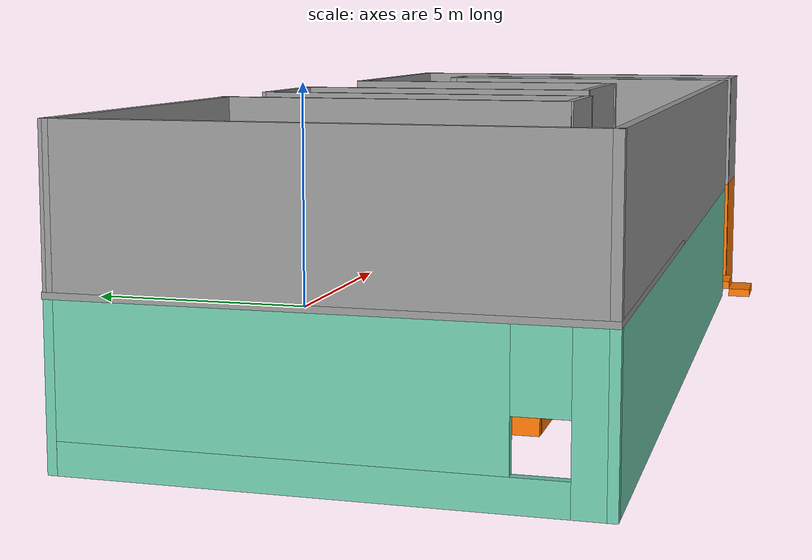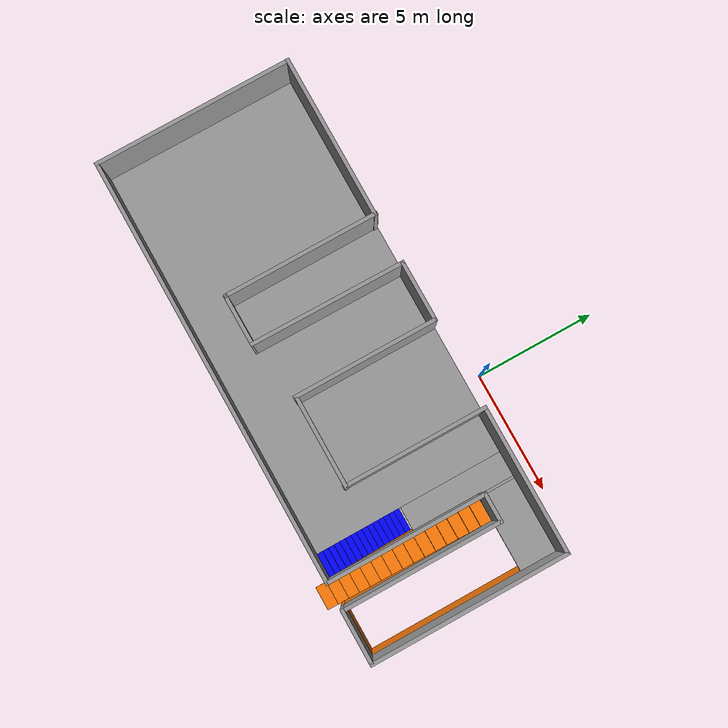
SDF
<?xml version='1.0'?>
<sdf version='1.6'>
  <model name='sal_building'>
    <pose frame=''>-3.02006 -5.15772 0 0 -0 0</pose>
    <link name='Floor_0'>
      <pose frame=''>0 0.303017 2.5 0 -0 0</pose>
      <visual name='Floor_0_Visual_0'>
        <pose frame=''>-2.15352 0 0.05 0 -0 0</pose>
        <geometry>
          <box>
            <size>16.1432 8.02059 0.1</size>
          </box>
        </geometry>
        <material>
          <script>
            <uri>file://media/materials/scripts/gazebo.material</uri>
            <name>Gazebo/Grey</name>
          </script>
          <ambient>1 1 1 1</ambient>
        </material>
      </visual>
      <collision name='Floor_0_Collision_0'>
        <geometry>
          <box>
            <size>16.1432 8.02059 0.1</size>
          </box>
        </geometry>
        <pose frame=''>-2.15352 0 0.05 0 -0 0</pose>
      </collision>
      <visual name='Floor_0_Visual_1'>
        <pose frame=''>6.46873 -3.93795 0.05 0 -0 0</pose>
        <geometry>
          <box>
            <size>1.10132 0.14469 0.1</size>
          </box>
        </geometry>
        <material>
          <script>
            <uri>file://media/materials/scripts/gazebo.material</uri>
            <name>Gazebo/Grey</name>
          </script>
          <ambient>1 1 1 1</ambient>
        </material>
      </visual>
      <collision name='Floor_0_Collision_1'>
        <geometry>
          <box>
            <size>1.10132 0.14469 0.1</size>
          </box>
        </geometry>
        <pose frame=''>6.46873 -3.93795 0.05 0 -0 0</pose>
      </collision>
      <visual name='Floor_0_Visual_2'>
        <pose frame=''>6.96873 0.072345 0.05 0 -0 0</pose>
        <geometry>
          <box>
            <size>0.101315 7.8759 0.1</size>
          </box>
        </geometry>
        <material>
          <script>
            <uri>file://media/materials/scripts/gazebo.material</uri>
            <name>Gazebo/Grey</name>
          </script>
          <ambient>1 1 1 1</ambient>
        </material>
      </visual>
      <collision name='Floor_0_Collision_2'>
        <geometry>
          <box>
            <size>0.101315 7.8759 0.1</size>
          </box>
        </geometry>
        <pose frame=''>6.96873 0.072345 0.05 0 -0 0</pose>
      </collision>
      <visual name='Floor_0_Visual_3'>
        <pose frame=''>6.41807 1.82235 0.05 0 -0 0</pose>
        <geometry>
          <box>
            <size>1 4.3759 0.1</size>
          </box>
        </geometry>
        <material>
          <script>
            <uri>file://media/materials/scripts/gazebo.material</uri>
            <name>Gazebo/Grey</name>
          </script>
          <ambient>1 1 1 1</ambient>
        </material>
      </visual>
      <collision name='Floor_0_Collision_3'>
        <geometry>
          <box>
            <size>1 4.3759 0.1</size>
          </box>
        </geometry>
        <pose frame=''>6.41807 1.82235 0.05 0 -0 0</pose>
      </collision>
      <visual name='Floor_0_Visual_4'>
        <pose frame=''>8.62225 3.17806 0.05 0 -0 0</pose>
        <geometry>
          <box>
            <size>3.20573 1.66447 0.1</size>
          </box>
        </geometry>
        <material>
          <script>
            <uri>file://media/materials/scripts/gazebo.material</uri>
            <name>Gazebo/Grey</name>
          </script>
          <ambient>1 1 1 1</ambient>
        </material>
      </visual>
      <collision name='Floor_0_Collision_4'>
        <geometry>
          <box>
            <size>3.20573 1.66447 0.1</size>
          </box>
        </geometry>
        <pose frame=''>8.62225 3.17806 0.05 0 -0 0</pose>
      </collision>
    </link>
    <link name='Stairs_0'>
      <visual name='Stairs_0_Visual_0'>
        <pose frame=''>6.41807 -0.179254 0.083333 0 -0 0</pose>
        <geometry>
          <box>
            <size>1 0.233333 0.166667</size>
          </box>
        </geometry>
        <material>
          <script>
            <uri>file://media/materials/scripts/gazebo.material</uri>
            <name>Gazebo/Grey</name>
          </script>
          <ambient>0 0 1 1</ambient>
        </material>
      </visual>
      <collision name='Stairs_0_Collision_0'>
        <geometry>
          <box>
            <size>1 0.233333 0.166667</size>
          </box>
        </geometry>
        <pose frame=''>6.41807 -0.179254 0.083333 0 -0 0</pose>
      </collision>
      <visual name='Stairs_0_Visual_1'>
        <pose frame=''>6.41807 -0.412587 0.25 0 -0 0</pose>
        <geometry>
          <box>
            <size>1 0.233333 0.166667</size>
          </box>
        </geometry>
        <material>
          <script>
            <uri>file://media/materials/scripts/gazebo.material</uri>
            <name>Gazebo/Grey</name>
          </script>
          <ambient>0 0 1 1</ambient>
        </material>
      </visual>
      <collision name='Stairs_0_Collision_1'>
        <geometry>
          <box>
            <size>1 0.233333 0.166667</size>
          </box>
        </geometry>
        <pose frame=''>6.41807 -0.412587 0.25 0 -0 0</pose>
      </collision>
      <visual name='Stairs_0_Visual_2'>
        <pose frame=''>6.41807 -0.64592 0.416667 0 -0 0</pose>
        <geometry>
          <box>
            <size>1 0.233333 0.166667</size>
          </box>
        </geometry>
        <material>
          <script>
            <uri>file://media/materials/scripts/gazebo.material</uri>
            <name>Gazebo/Grey</name>
          </script>
          <ambient>0 0 1 1</ambient>
        </material>
      </visual>
      <collision name='Stairs_0_Collision_2'>
        <geometry>
          <box>
            <size>1 0.233333 0.166667</size>
          </box>
        </geometry>
        <pose frame=''>6.41807 -0.64592 0.416667 0 -0 0</pose>
      </collision>
      <visual name='Stairs_0_Visual_3'>
        <pose frame=''>6.41807 -0.879253 0.583333 0 -0 0</pose>
        <geometry>
          <box>
            <size>1 0.233333 0.166667</size>
          </box>
        </geometry>
        <material>
          <script>
            <uri>file://media/materials/scripts/gazebo.material</uri>
            <name>Gazebo/Grey</name>
          </script>
          <ambient>0 0 1 1</ambient>
        </material>
      </visual>
      <collision name='Stairs_0_Collision_3'>
        <geometry>
          <box>
            <size>1 0.233333 0.166667</size>
          </box>
        </geometry>
        <pose frame=''>6.41807 -0.879253 0.583333 0 -0 0</pose>
      </collision>
      <visual name='Stairs_0_Visual_4'>
        <pose frame=''>6.41807 -1.11259 0.75 0 -0 0</pose>
        <geometry>
          <box>
            <size>1 0.233333 0.166667</size>
          </box>
        </geometry>
        <material>
          <script>
            <uri>file://media/materials/scripts/gazebo.material</uri>
            <name>Gazebo/Grey</name>
          </script>
          <ambient>0 0 1 1</ambient>
        </material>
      </visual>
      <collision name='Stairs_0_Collision_4'>
        <geometry>
          <box>
            <size>1 0.233333 0.166667</size>
          </box>
        </geometry>
        <pose frame=''>6.41807 -1.11259 0.75 0 -0 0</pose>
      </collision>
      <visual name='Stairs_0_Visual_5'>
        <pose frame=''>6.41807 -1.34592 0.916667 0 -0 0</pose>
        <geometry>
          <box>
            <size>1 0.233333 0.166667</size>
          </box>
        </geometry>
        <material>
          <script>
            <uri>file://media/materials/scripts/gazebo.material</uri>
            <name>Gazebo/Grey</name>
          </script>
          <ambient>0 0 1 1</ambient>
        </material>
      </visual>
      <collision name='Stairs_0_Collision_5'>
        <geometry>
          <box>
            <size>1 0.233333 0.166667</size>
          </box>
        </geometry>
        <pose frame=''>6.41807 -1.34592 0.916667 0 -0 0</pose>
      </collision>
      <visual name='Stairs_0_Visual_6'>
        <pose frame=''>6.41807 -1.57925 1.08333 0 -0 0</pose>
        <geometry>
          <box>
            <size>1 0.233333 0.166667</size>
          </box>
        </geometry>
        <material>
          <script>
            <uri>file://media/materials/scripts/gazebo.material</uri>
            <name>Gazebo/Grey</name>
          </script>
          <ambient>0 0 1 1</ambient>
        </material>
      </visual>
      <collision name='Stairs_0_Collision_6'>
        <geometry>
          <box>
            <size>1 0.233333 0.166667</size>
          </box>
        </geometry>
        <pose frame=''>6.41807 -1.57925 1.08333 0 -0 0</pose>
      </collision>
      <visual name='Stairs_0_Visual_7'>
        <pose frame=''>6.41807 -1.81259 1.25 0 -0 0</pose>
        <geometry>
          <box>
            <size>1 0.233333 0.166667</size>
          </box>
        </geometry>
        <material>
          <script>
            <uri>file://media/materials/scripts/gazebo.material</uri>
            <name>Gazebo/Grey</name>
          </script>
          <ambient>0 0 1 1</ambient>
        </material>
      </visual>
      <collision name='Stairs_0_Collision_7'>
        <geometry>
          <box>
            <size>1 0.233333 0.166667</size>
          </box>
        </geometry>
        <pose frame=''>6.41807 -1.81259 1.25 0 -0 0</pose>
      </collision>
      <visual name='Stairs_0_Visual_8'>
        <pose frame=''>6.41807 -2.04592 1.41667 0 -0 0</pose>
        <geometry>
          <box>
            <size>1 0.233333 0.166667</size>
          </box>
        </geometry>
        <material>
          <script>
            <uri>file://media/materials/scripts/gazebo.material</uri>
            <name>Gazebo/Grey</name>
          </script>
          <ambient>0 0 1 1</ambient>
        </material>
      </visual>
      <collision name='Stairs_0_Collision_8'>
        <geometry>
          <box>
            <size>1 0.233333 0.166667</size>
          </box>
        </geometry>
        <pose frame=''>6.41807 -2.04592 1.41667 0 -0 0</pose>
      </collision>
      <visual name='Stairs_0_Visual_9'>
        <pose frame=''>6.41807 -2.27925 1.58333 0 -0 0</pose>
        <geometry>
          <box>
            <size>1 0.233333 0.166667</size>
          </box>
        </geometry>
        <material>
          <script>
            <uri>file://media/materials/scripts/gazebo.material</uri>
            <name>Gazebo/Grey</name>
          </script>
          <ambient>0 0 1 1</ambient>
        </material>
      </visual>
      <collision name='Stairs_0_Collision_9'>
        <geometry>
          <box>
            <size>1 0.233333 0.166667</size>
          </box>
        </geometry>
        <pose frame=''>6.41807 -2.27925 1.58333 0 -0 0</pose>
      </collision>
      <visual name='Stairs_0_Visual_10'>
        <pose frame=''>6.41807 -2.51259 1.75 0 -0 0</pose>
        <geometry>
          <box>
            <size>1 0.233333 0.166667</size>
          </box>
        </geometry>
        <material>
          <script>
            <uri>file://media/materials/scripts/gazebo.material</uri>
            <name>Gazebo/Grey</name>
          </script>
          <ambient>0 0 1 1</ambient>
        </material>
      </visual>
      <collision name='Stairs_0_Collision_10'>
        <geometry>
          <box>
            <size>1 0.233333 0.166667</size>
          </box>
        </geometry>
        <pose frame=''>6.41807 -2.51259 1.75 0 -0 0</pose>
      </collision>
      <visual name='Stairs_0_Visual_11'>
        <pose frame=''>6.41807 -2.74592 1.91667 0 -0 0</pose>
        <geometry>
          <box>
            <size>1 0.233333 0.166667</size>
          </box>
        </geometry>
        <material>
          <script>
            <uri>file://media/materials/scripts/gazebo.material</uri>
            <name>Gazebo/Grey</name>
          </script>
          <ambient>0 0 1 1</ambient>
        </material>
      </visual>
      <collision name='Stairs_0_Collision_11'>
        <geometry>
          <box>
            <size>1 0.233333 0.166667</size>
          </box>
        </geometry>
        <pose frame=''>6.41807 -2.74592 1.91667 0 -0 0</pose>
      </collision>
      <visual name='Stairs_0_Visual_12'>
        <pose frame=''>6.41807 -2.97925 2.08333 0 -0 0</pose>
        <geometry>
          <box>
            <size>1 0.233333 0.166667</size>
          </box>
        </geometry>
        <material>
          <script>
            <uri>file://media/materials/scripts/gazebo.material</uri>
            <name>Gazebo/Grey</name>
          </script>
          <ambient>0 0 1 1</ambient>
        </material>
      </visual>
      <collision name='Stairs_0_Collision_12'>
        <geometry>
          <box>
            <size>1 0.233333 0.166667</size>
          </box>
        </geometry>
        <pose frame=''>6.41807 -2.97925 2.08333 0 -0 0</pose>
      </collision>
      <visual name='Stairs_0_Visual_13'>
        <pose frame=''>6.41807 -3.21259 2.25 0 -0 0</pose>
        <geometry>
          <box>
            <size>1 0.233333 0.166667</size>
          </box>
        </geometry>
        <material>
          <script>
            <uri>file://media/materials/scripts/gazebo.material</uri>
            <name>Gazebo/Grey</name>
          </script>
          <ambient>0 0 1 1</ambient>
        </material>
      </visual>
      <collision name='Stairs_0_Collision_13'>
        <geometry>
          <box>
            <size>1 0.233333 0.166667</size>
          </box>
        </geometry>
        <pose frame=''>6.41807 -3.21259 2.25 0 -0 0</pose>
      </collision>
      <visual name='Stairs_0_Visual_14'>
        <pose frame=''>6.41807 -3.44592 2.41667 0 -0 0</pose>
        <geometry>
          <box>
            <size>1 0.233333 0.166667</size>
          </box>
        </geometry>
        <material>
          <script>
            <uri>file://media/materials/scripts/gazebo.material</uri>
            <name>Gazebo/Grey</name>
          </script>
          <ambient>0 0 1 1</ambient>
        </material>
      </visual>
      <collision name='Stairs_0_Collision_14'>
        <geometry>
          <box>
            <size>1 0.233333 0.166667</size>
          </box>
        </geometry>
        <pose frame=''>6.41807 -3.44592 2.41667 0 -0 0</pose>
      </collision>
    </link>
    <link name='Stairs_1'>
      <visual name='Stairs_1_Visual_0'>
        <pose frame=''>7.50551 -4.08124 0.083333 0 -0 -3.14159</pose>
        <geometry>
          <box>
            <size>0.972243 0.464143 0.166667</size>
          </box>
        </geometry>
        <material>
          <script>
            <uri>file://media/materials/scripts/gazebo.material</uri>
            <name>Gazebo/Grey</name>
          </script>
          <ambient>0.996078 0.47451 0.0196078 1</ambient>
        </material>
      </visual>
      <collision name='Stairs_1_Collision_0'>
        <geometry>
          <box>
            <size>0.972243 0.464143 0.166667</size>
          </box>
        </geometry>
        <pose frame=''>7.50551 -4.08124 0.083333 0 -0 -3.14159</pose>
      </collision>
      <visual name='Stairs_1_Visual_1'>
        <pose frame=''>7.50551 -3.61709 0.25 0 -0 -3.14159</pose>
        <geometry>
          <box>
            <size>0.972243 0.464143 0.166667</size>
          </box>
        </geometry>
        <material>
          <script>
            <uri>file://media/materials/scripts/gazebo.material</uri>
            <name>Gazebo/Grey</name>
          </script>
          <ambient>0.996078 0.47451 0.0196078 1</ambient>
        </material>
      </visual>
      <collision name='Stairs_1_Collision_1'>
        <geometry>
          <box>
            <size>0.972243 0.464143 0.166667</size>
          </box>
        </geometry>
        <pose frame=''>7.50551 -3.61709 0.25 0 -0 -3.14159</pose>
      </collision>
      <visual name='Stairs_1_Visual_2'>
        <pose frame=''>7.50551 -3.15295 0.416667 0 -0 -3.14159</pose>
        <geometry>
          <box>
            <size>0.972243 0.464143 0.166667</size>
          </box>
        </geometry>
        <material>
          <script>
            <uri>file://media/materials/scripts/gazebo.material</uri>
            <name>Gazebo/Grey</name>
          </script>
          <ambient>0.996078 0.47451 0.0196078 1</ambient>
        </material>
      </visual>
      <collision name='Stairs_1_Collision_2'>
        <geometry>
          <box>
            <size>0.972243 0.464143 0.166667</size>
          </box>
        </geometry>
        <pose frame=''>7.50551 -3.15295 0.416667 0 -0 -3.14159</pose>
      </collision>
      <visual name='Stairs_1_Visual_3'>
        <pose frame=''>7.50551 -2.68881 0.583333 0 -0 -3.14159</pose>
        <geometry>
          <box>
            <size>0.972243 0.464143 0.166667</size>
          </box>
        </geometry>
        <material>
          <script>
            <uri>file://media/materials/scripts/gazebo.material</uri>
            <name>Gazebo/Grey</name>
          </script>
          <ambient>0.996078 0.47451 0.0196078 1</ambient>
        </material>
      </visual>
      <collision name='Stairs_1_Collision_3'>
        <geometry>
          <box>
            <size>0.972243 0.464143 0.166667</size>
          </box>
        </geometry>
        <pose frame=''>7.50551 -2.68881 0.583333 0 -0 -3.14159</pose>
      </collision>
      <visual name='Stairs_1_Visual_4'>
        <pose frame=''>7.50551 -2.22467 0.75 0 -0 -3.14159</pose>
        <geometry>
          <box>
            <size>0.972243 0.464143 0.166667</size>
          </box>
        </geometry>
        <material>
          <script>
            <uri>file://media/materials/scripts/gazebo.material</uri>
            <name>Gazebo/Grey</name>
          </script>
          <ambient>0.996078 0.47451 0.0196078 1</ambient>
        </material>
      </visual>
      <collision name='Stairs_1_Collision_4'>
        <geometry>
          <box>
            <size>0.972243 0.464143 0.166667</size>
          </box>
        </geometry>
        <pose frame=''>7.50551 -2.22467 0.75 0 -0 -3.14159</pose>
      </collision>
      <visual name='Stairs_1_Visual_5'>
        <pose frame=''>7.50551 -1.76052 0.916667 0 -0 -3.14159</pose>
        <geometry>
          <box>
            <size>0.972243 0.464143 0.166667</size>
          </box>
        </geometry>
        <material>
          <script>
            <uri>file://media/materials/scripts/gazebo.material</uri>
            <name>Gazebo/Grey</name>
          </script>
          <ambient>0.996078 0.47451 0.0196078 1</ambient>
        </material>
      </visual>
      <collision name='Stairs_1_Collision_5'>
        <geometry>
          <box>
            <size>0.972243 0.464143 0.166667</size>
          </box>
        </geometry>
        <pose frame=''>7.50551 -1.76052 0.916667 0 -0 -3.14159</pose>
      </collision>
      <visual name='Stairs_1_Visual_6'>
        <pose frame=''>7.50551 -1.29638 1.08333 0 -0 -3.14159</pose>
        <geometry>
          <box>
            <size>0.972243 0.464143 0.166667</size>
          </box>
        </geometry>
        <material>
          <script>
            <uri>file://media/materials/scripts/gazebo.material</uri>
            <name>Gazebo/Grey</name>
          </script>
          <ambient>0.996078 0.47451 0.0196078 1</ambient>
        </material>
      </visual>
      <collision name='Stairs_1_Collision_6'>
        <geometry>
          <box>
            <size>0.972243 0.464143 0.166667</size>
          </box>
        </geometry>
        <pose frame=''>7.50551 -1.29638 1.08333 0 -0 -3.14159</pose>
      </collision>
      <visual name='Stairs_1_Visual_7'>
        <pose frame=''>7.50551 -0.832236 1.25 0 -0 -3.14159</pose>
        <geometry>
          <box>
            <size>0.972243 0.464143 0.166667</size>
          </box>
        </geometry>
        <material>
          <script>
            <uri>file://media/materials/scripts/gazebo.material</uri>
            <name>Gazebo/Grey</name>
          </script>
          <ambient>0.996078 0.47451 0.0196078 1</ambient>
        </material>
      </visual>
      <collision name='Stairs_1_Collision_7'>
        <geometry>
          <box>
            <size>0.972243 0.464143 0.166667</size>
          </box>
        </geometry>
        <pose frame=''>7.50551 -0.832236 1.25 0 -0 -3.14159</pose>
      </collision>
      <visual name='Stairs_1_Visual_8'>
        <pose frame=''>7.50551 -0.368093 1.41667 0 -0 -3.14159</pose>
        <geometry>
          <box>
            <size>0.972243 0.464143 0.166667</size>
          </box>
        </geometry>
        <material>
          <script>
            <uri>file://media/materials/scripts/gazebo.material</uri>
            <name>Gazebo/Grey</name>
          </script>
          <ambient>0.996078 0.47451 0.0196078 1</ambient>
        </material>
      </visual>
      <collision name='Stairs_1_Collision_8'>
        <geometry>
          <box>
            <size>0.972243 0.464143 0.166667</size>
          </box>
        </geometry>
        <pose frame=''>7.50551 -0.368093 1.41667 0 -0 -3.14159</pose>
      </collision>
      <visual name='Stairs_1_Visual_9'>
        <pose frame=''>7.50551 0.09605 1.58333 0 -0 -3.14159</pose>
        <geometry>
          <box>
            <size>0.972243 0.464143 0.166667</size>
          </box>
        </geometry>
        <material>
          <script>
            <uri>file://media/materials/scripts/gazebo.material</uri>
            <name>Gazebo/Grey</name>
          </script>
          <ambient>0.996078 0.47451 0.0196078 1</ambient>
        </material>
      </visual>
      <collision name='Stairs_1_Collision_9'>
        <geometry>
          <box>
            <size>0.972243 0.464143 0.166667</size>
          </box>
        </geometry>
        <pose frame=''>7.50551 0.09605 1.58333 0 -0 -3.14159</pose>
      </collision>
      <visual name='Stairs_1_Visual_10'>
        <pose frame=''>7.50551 0.560194 1.75 0 -0 -3.14159</pose>
        <geometry>
          <box>
            <size>0.972243 0.464143 0.166667</size>
          </box>
        </geometry>
        <material>
          <script>
            <uri>file://media/materials/scripts/gazebo.material</uri>
            <name>Gazebo/Grey</name>
          </script>
          <ambient>0.996078 0.47451 0.0196078 1</ambient>
        </material>
      </visual>
      <collision name='Stairs_1_Collision_10'>
        <geometry>
          <box>
            <size>0.972243 0.464143 0.166667</size>
          </box>
        </geometry>
        <pose frame=''>7.50551 0.560194 1.75 0 -0 -3.14159</pose>
      </collision>
      <visual name='Stairs_1_Visual_11'>
        <pose frame=''>7.50551 1.02434 1.91667 0 -0 -3.14159</pose>
        <geometry>
          <box>
            <size>0.972243 0.464143 0.166667</size>
          </box>
        </geometry>
        <material>
          <script>
            <uri>file://media/materials/scripts/gazebo.material</uri>
            <name>Gazebo/Grey</name>
          </script>
          <ambient>0.996078 0.47451 0.0196078 1</ambient>
        </material>
      </visual>
      <collision name='Stairs_1_Collision_11'>
        <geometry>
          <box>
            <size>0.972243 0.464143 0.166667</size>
          </box>
        </geometry>
        <pose frame=''>7.50551 1.02434 1.91667 0 -0 -3.14159</pose>
      </collision>
      <visual name='Stairs_1_Visual_12'>
        <pose frame=''>7.50551 1.48848 2.08333 0 -0 -3.14159</pose>
        <geometry>
          <box>
            <size>0.972243 0.464143 0.166667</size>
          </box>
        </geometry>
        <material>
          <script>
            <uri>file://media/materials/scripts/gazebo.material</uri>
            <name>Gazebo/Grey</name>
          </script>
          <ambient>0.996078 0.47451 0.0196078 1</ambient>
        </material>
      </visual>
      <collision name='Stairs_1_Collision_12'>
        <geometry>
          <box>
            <size>0.972243 0.464143 0.166667</size>
          </box>
        </geometry>
        <pose frame=''>7.50551 1.48848 2.08333 0 -0 -3.14159</pose>
      </collision>
      <visual name='Stairs_1_Visual_13'>
        <pose frame=''>7.50551 1.95262 2.25 0 -0 -3.14159</pose>
        <geometry>
          <box>
            <size>0.972243 0.464143 0.166667</size>
          </box>
        </geometry>
        <material>
          <script>
            <uri>file://media/materials/scripts/gazebo.material</uri>
            <name>Gazebo/Grey</name>
          </script>
          <ambient>0.996078 0.47451 0.0196078 1</ambient>
        </material>
      </visual>
      <collision name='Stairs_1_Collision_13'>
        <geometry>
          <box>
            <size>0.972243 0.464143 0.166667</size>
          </box>
        </geometry>
        <pose frame=''>7.50551 1.95262 2.25 0 -0 -3.14159</pose>
      </collision>
      <visual name='Stairs_1_Visual_14'>
        <pose frame=''>7.50551 2.41677 2.41667 0 -0 -3.14159</pose>
        <geometry>
          <box>
            <size>0.972243 0.464143 0.166667</size>
          </box>
        </geometry>
        <material>
          <script>
            <uri>file://media/materials/scripts/gazebo.material</uri>
            <name>Gazebo/Grey</name>
          </script>
          <ambient>0.996078 0.47451 0.0196078 1</ambient>
        </material>
      </visual>
      <collision name='Stairs_1_Collision_14'>
        <geometry>
          <box>
            <size>0.972243 0.464143 0.166667</size>
          </box>
        </geometry>
        <pose frame=''>7.50551 2.41677 2.41667 0 -0 -3.14159</pose>
      </collision>
    </link>
    <link name='Wall_0'>
      <collision name='Wall_0_Collision'>
        <geometry>
          <box>
            <size>2.5 0.15 2.5</size>
          </box>
        </geometry>
        <pose frame=''>0 0 1.25 0 -0 0</pose>
      </collision>
      <visual name='Wall_0_Visual'>
        <pose frame=''>0 0 1.25 0 -0 0</pose>
        <geometry>
          <box>
            <size>2.5 0.15 2.5</size>
          </box>
        </geometry>
        <material>
          <script>
            <uri>file://media/materials/scripts/gazebo.material</uri>
            <name>Gazebo/Grey</name>
          </script>
          <ambient>1 0.764706 0.305882 1</ambient>
        </material>
      </visual>
      <pose frame=''>-0.474942 4.21772 0 0 -0 0</pose>
    </link>
    <link name='Wall_1'>
      <collision name='Wall_1_Collision'>
        <geometry>
          <box>
            <size>3.5 0.15 2.5</size>
          </box>
        </geometry>
        <pose frame=''>0 0 1.25 0 -0 0</pose>
      </collision>
      <visual name='Wall_1_Visual'>
        <pose frame=''>0 0 1.25 0 -0 0</pose>
        <geometry>
          <box>
            <size>3.5 0.15 2.5</size>
          </box>
        </geometry>
        <material>
          <script>
            <uri>file://media/materials/scripts/gazebo.material</uri>
            <name>Gazebo/Grey</name>
          </script>
          <ambient>1 0.764706 0.305882 1</ambient>
        </material>
      </visual>
      <pose frame=''>0.700058 2.54272 0 0 0 -1.5708</pose>
    </link>
    <link name='Wall_10'>
      <collision name='Wall_10_Collision'>
        <geometry>
          <box>
            <size>17.25 0.15 2.5</size>
          </box>
        </geometry>
        <pose frame=''>0 0 1.25 0 -0 0</pose>
      </collision>
      <visual name='Wall_10_Visual'>
        <pose frame=''>0 0 1.25 0 -0 0</pose>
        <geometry>
          <box>
            <size>17.25 0.15 2.5</size>
          </box>
        </geometry>
        <material>
          <script>
            <uri>file://media/materials/scripts/gazebo.material</uri>
            <name>Gazebo/Grey</name>
          </script>
          <ambient>0.435294 0.796078 0.67451 1</ambient>
        </material>
      </visual>
      <pose frame=''>-1.59994 -3.63228 0 0 -0 3.14159</pose>
    </link>
    <link name='Wall_11'>
      <pose frame=''>-10.1499 0.292723 0 0 -0 1.5708</pose>
      <visual name='Wall_11_Visual_0'>
        <pose frame=''>-3.69156 0 1.25 0 -0 0</pose>
        <geometry>
          <box>
            <size>0.616883 0.15 2.5</size>
          </box>
        </geometry>
        <material>
          <script>
            <uri>file://media/materials/scripts/gazebo.material</uri>
            <name>Gazebo/Grey</name>
          </script>
          <ambient>0.435294 0.796078 0.67451 1</ambient>
        </material>
      </visual>
      <collision name='Wall_11_Collision_0'>
        <geometry>
          <box>
            <size>0.616883 0.15 2.5</size>
          </box>
        </geometry>
        <pose frame=''>-3.69156 0 1.25 0 -0 0</pose>
      </collision>
      <visual name='Wall_11_Visual_1'>
        <pose frame=''>0.308442 0 0.25 0 -0 0</pose>
        <geometry>
          <box>
            <size>7.38312 0.15 0.5</size>
          </box>
        </geometry>
        <material>
          <script>
            <uri>file://media/materials/scripts/gazebo.material</uri>
            <name>Gazebo/Grey</name>
          </script>
          <ambient>0.435294 0.796078 0.67451 1</ambient>
        </material>
      </visual>
      <collision name='Wall_11_Collision_1'>
        <geometry>
          <box>
            <size>7.38312 0.15 0.5</size>
          </box>
        </geometry>
        <pose frame=''>0.308442 0 0.25 0 -0 0</pose>
      </collision>
      <visual name='Wall_11_Visual_2'>
        <pose frame=''>0.708442 0 1.5 0 -0 0</pose>
        <geometry>
          <box>
            <size>6.58312 0.15 2</size>
          </box>
        </geometry>
        <material>
          <script>
            <uri>file://media/materials/scripts/gazebo.material</uri>
            <name>Gazebo/Grey</name>
          </script>
          <ambient>0.435294 0.796078 0.67451 1</ambient>
        </material>
      </visual>
      <collision name='Wall_11_Collision_2'>
        <geometry>
          <box>
            <size>6.58312 0.15 2</size>
          </box>
        </geometry>
        <pose frame=''>0.708442 0 1.5 0 -0 0</pose>
      </collision>
      <visual name='Wall_11_Visual_3'>
        <pose frame=''>-2.98312 0 1.9 0 -0 0</pose>
        <geometry>
          <box>
            <size>0.8 0.15 1.2</size>
          </box>
        </geometry>
        <material>
          <script>
            <uri>file://media/materials/scripts/gazebo.material</uri>
            <name>Gazebo/Grey</name>
          </script>
          <ambient>0.435294 0.796078 0.67451 1</ambient>
        </material>
      </visual>
      <collision name='Wall_11_Collision_3'>
        <geometry>
          <box>
            <size>0.8 0.15 1.2</size>
          </box>
        </geometry>
        <pose frame=''>-2.98312 0 1.9 0 -0 0</pose>
      </collision>
    </link>
    <link name='Wall_12'>
      <collision name='Wall_12_Collision'>
        <geometry>
          <box>
            <size>4 0.15 2.5</size>
          </box>
        </geometry>
        <pose frame=''>0 0 1.25 0 -0 0</pose>
      </collision>
      <visual name='Wall_12_Visual'>
        <pose frame=''>0 0 1.25 0 -0 0</pose>
        <geometry>
          <box>
            <size>4 0.15 2.5</size>
          </box>
        </geometry>
        <material>
          <script>
            <uri>file://media/materials/scripts/gazebo.material</uri>
            <name>Gazebo/Grey</name>
          </script>
          <ambient>0.435294 0.796078 0.67451 1</ambient>
        </material>
      </visual>
      <pose frame=''>-8.22494 4.21772 0 0 -0 0</pose>
    </link>
    <link name='Wall_13'>
      <collision name='Wall_13_Collision'>
        <geometry>
          <box>
            <size>6.25 0.15 2.5</size>
          </box>
        </geometry>
        <pose frame=''>0 0 1.25 0 -0 0</pose>
      </collision>
      <visual name='Wall_13_Visual'>
        <pose frame=''>0 0 1.25 0 -0 0</pose>
        <geometry>
          <box>
            <size>6.25 0.15 2.5</size>
          </box>
        </geometry>
        <material>
          <script>
            <uri>file://media/materials/scripts/gazebo.material</uri>
            <name>Gazebo/Grey</name>
          </script>
          <ambient>0.996078 0.47451 0.0196078 1</ambient>
        </material>
      </visual>
      <pose frame=''>-6.29994 1.16772 0 0 0 -1.5708</pose>
    </link>
    <link name='Wall_14'>
      <pose frame=''>-3.99994 -1.88228 0 0 -0 0</pose>
      <visual name='Wall_14_Visual_0'>
        <pose frame=''>-1.42907 0 1.25 0 -0 0</pose>
        <geometry>
          <box>
            <size>1.89187 0.15 2.5</size>
          </box>
        </geometry>
        <material>
          <script>
            <uri>file://media/materials/scripts/gazebo.material</uri>
            <name>Gazebo/Grey</name>
          </script>
          <ambient>0.996078 0.47451 0.0196078 1</ambient>
        </material>
      </visual>
      <collision name='Wall_14_Collision_0'>
        <geometry>
          <box>
            <size>1.89187 0.15 2.5</size>
          </box>
        </geometry>
        <pose frame=''>-1.42907 0 1.25 0 -0 0</pose>
      </collision>
      <visual name='Wall_14_Visual_1'>
        <pose frame=''>0.945934 0 0.25 0 -0 0</pose>
        <geometry>
          <box>
            <size>2.85813 0.15 0.5</size>
          </box>
        </geometry>
        <material>
          <script>
            <uri>file://media/materials/scripts/gazebo.material</uri>
            <name>Gazebo/Grey</name>
          </script>
          <ambient>0.996078 0.47451 0.0196078 1</ambient>
        </material>
      </visual>
      <collision name='Wall_14_Collision_1'>
        <geometry>
          <box>
            <size>2.85813 0.15 0.5</size>
          </box>
        </geometry>
        <pose frame=''>0.945934 0 0.25 0 -0 0</pose>
      </collision>
      <visual name='Wall_14_Visual_2'>
        <pose frame=''>1.34593 0 1.5 0 -0 0</pose>
        <geometry>
          <box>
            <size>2.05813 0.15 2</size>
          </box>
        </geometry>
        <material>
          <script>
            <uri>file://media/materials/scripts/gazebo.material</uri>
            <name>Gazebo/Grey</name>
          </script>
          <ambient>0.996078 0.47451 0.0196078 1</ambient>
        </material>
      </visual>
      <collision name='Wall_14_Collision_2'>
        <geometry>
          <box>
            <size>2.05813 0.15 2</size>
          </box>
        </geometry>
        <pose frame=''>1.34593 0 1.5 0 -0 0</pose>
      </collision>
      <visual name='Wall_14_Visual_3'>
        <pose frame=''>-0.083131 0 1.9 0 -0 0</pose>
        <geometry>
          <box>
            <size>0.8 0.15 1.2</size>
          </box>
        </geometry>
        <material>
          <script>
            <uri>file://media/materials/scripts/gazebo.material</uri>
            <name>Gazebo/Grey</name>
          </script>
          <ambient>0.996078 0.47451 0.0196078 1</ambient>
        </material>
      </visual>
      <collision name='Wall_14_Collision_3'>
        <geometry>
          <box>
            <size>0.8 0.15 1.2</size>
          </box>
        </geometry>
        <pose frame=''>-0.083131 0 1.9 0 -0 0</pose>
      </collision>
    </link>
    <link name='Wall_15'>
      <collision name='Wall_15_Collision'>
        <geometry>
          <box>
            <size>6.25021 0.15 2.5</size>
          </box>
        </geometry>
        <pose frame=''>0 0 1.25 0 -0 0</pose>
      </collision>
      <visual name='Wall_15_Visual'>
        <pose frame=''>0 0 1.25 0 -0 0</pose>
        <geometry>
          <box>
            <size>6.25021 0.15 2.5</size>
          </box>
        </geometry>
        <material>
          <script>
            <uri>file://media/materials/scripts/gazebo.material</uri>
            <name>Gazebo/Grey</name>
          </script>
          <ambient>0.996078 0.47451 0.0196078 1</ambient>
        </material>
      </visual>
      <pose frame=''>-1.67494 1.16772 0 0 -0 1.5626</pose>
    </link>
    <link name='Wall_17'>
      <collision name='Wall_17_Collision'>
        <geometry>
          <box>
            <size>2.5 0.15 2.5</size>
          </box>
        </geometry>
        <pose frame=''>0 0 1.25 0 -0 0</pose>
      </collision>
      <visual name='Wall_17_Visual'>
        <pose frame=''>0 0 1.25 0 -0 0</pose>
        <geometry>
          <box>
            <size>2.5 0.15 2.5</size>
          </box>
        </geometry>
        <material>
          <script>
            <uri>file://media/materials/scripts/gazebo.material</uri>
            <name>Gazebo/Grey</name>
          </script>
          <ambient>1 1 1 1</ambient>
        </material>
      </visual>
      <pose frame=''>-0.474942 4.21772 2.5 0 -0 0</pose>
    </link>
    <link name='Wall_18'>
      <collision name='Wall_18_Collision'>
        <geometry>
          <box>
            <size>5.82486 0.15 2.5</size>
          </box>
        </geometry>
        <pose frame=''>0 0 1.25 0 -0 0</pose>
      </collision>
      <visual name='Wall_18_Visual'>
        <pose frame=''>0 0 1.25 0 -0 0</pose>
        <geometry>
          <box>
            <size>5.82486 0.15 2.5</size>
          </box>
        </geometry>
        <material>
          <script>
            <uri>file://media/materials/scripts/gazebo.material</uri>
            <name>Gazebo/Grey</name>
          </script>
          <ambient>1 1 1 1</ambient>
        </material>
      </visual>
      <pose frame=''>0.700058 1.38029 2.5 0 0 -1.5708</pose>
    </link>
    <link name='Wall_19'>
      <collision name='Wall_19_Collision'>
        <geometry>
          <box>
            <size>3.75 0.15 2.5</size>
          </box>
        </geometry>
        <pose frame=''>0 0 1.25 0 -0 0</pose>
      </collision>
      <visual name='Wall_19_Visual'>
        <pose frame=''>0 0 1.25 0 -0 0</pose>
        <geometry>
          <box>
            <size>3.75 0.15 2.5</size>
          </box>
        </geometry>
        <material>
          <script>
            <uri>file://media/materials/scripts/gazebo.material</uri>
            <name>Gazebo/Grey</name>
          </script>
          <ambient>1 1 1 1</ambient>
        </material>
      </visual>
      <pose frame=''>2.53065 -1.42654 2.5 0 -0 0</pose>
    </link>
    <link name='Wall_2'>
      <pose frame=''>2.50006 0.867723 0 0 -0 0</pose>
      <visual name='Wall_2_Visual_0'>
        <pose frame=''>-1.78493 0 1.25 0 -0 0</pose>
        <geometry>
          <box>
            <size>0.18014 0.15 2.5</size>
          </box>
        </geometry>
        <material>
          <script>
            <uri>file://media/materials/scripts/gazebo.material</uri>
            <name>Gazebo/Grey</name>
          </script>
          <ambient>0 0 1 1</ambient>
        </material>
      </visual>
      <collision name='Wall_2_Collision_0'>
        <geometry>
          <box>
            <size>0.18014 0.15 2.5</size>
          </box>
        </geometry>
        <pose frame=''>-1.78493 0 1.25 0 -0 0</pose>
      </collision>
      <visual name='Wall_2_Visual_1'>
        <pose frame=''>0.54007 0 1.25 0 -0 0</pose>
        <geometry>
          <box>
            <size>2.66986 0.15 2.5</size>
          </box>
        </geometry>
        <material>
          <script>
            <uri>file://media/materials/scripts/gazebo.material</uri>
            <name>Gazebo/Grey</name>
          </script>
          <ambient>0 0 1 1</ambient>
        </material>
      </visual>
      <collision name='Wall_2_Collision_1'>
        <geometry>
          <box>
            <size>2.66986 0.15 2.5</size>
          </box>
        </geometry>
        <pose frame=''>0.54007 0 1.25 0 -0 0</pose>
      </collision>
      <visual name='Wall_2_Visual_2'>
        <pose frame=''>-1.24486 0 2.25 0 -0 0</pose>
        <geometry>
          <box>
            <size>0.9 0.15 0.5</size>
          </box>
        </geometry>
        <material>
          <script>
            <uri>file://media/materials/scripts/gazebo.material</uri>
            <name>Gazebo/Grey</name>
          </script>
          <ambient>0 0 1 1</ambient>
        </material>
      </visual>
      <collision name='Wall_2_Collision_2'>
        <geometry>
          <box>
            <size>0.9 0.15 0.5</size>
          </box>
        </geometry>
        <pose frame=''>-1.24486 0 2.25 0 -0 0</pose>
      </collision>
    </link>
    <link name='Wall_20'>
      <collision name='Wall_20_Collision'>
        <geometry>
          <box>
            <size>5.82486 0.15 2.5</size>
          </box>
        </geometry>
        <pose frame=''>0 0 1.25 0 -0 0</pose>
      </collision>
      <visual name='Wall_20_Visual'>
        <pose frame=''>0 0 1.25 0 -0 0</pose>
        <geometry>
          <box>
            <size>5.82486 0.15 2.5</size>
          </box>
        </geometry>
        <material>
          <script>
            <uri>file://media/materials/scripts/gazebo.material</uri>
            <name>Gazebo/Grey</name>
          </script>
          <ambient>1 1 1 1</ambient>
        </material>
      </visual>
      <pose frame=''>4.30006 1.38029 2.5 0 -0 1.5708</pose>
    </link>
    <link name='Wall_21'>
      <collision name='Wall_21_Collision'>
        <geometry>
          <box>
            <size>6 0.15 2.5</size>
          </box>
        </geometry>
        <pose frame=''>0 0 1.25 0 -0 0</pose>
      </collision>
      <visual name='Wall_21_Visual'>
        <pose frame=''>0 0 1.25 0 -0 0</pose>
        <geometry>
          <box>
            <size>6 0.15 2.5</size>
          </box>
        </geometry>
        <material>
          <script>
            <uri>file://media/materials/scripts/gazebo.material</uri>
            <name>Gazebo/Grey</name>
          </script>
          <ambient>1 1 1 1</ambient>
        </material>
      </visual>
      <pose frame=''>7.22506 4.21772 2.5 0 -0 0</pose>
    </link>
    <link name='Wall_22'>
      <collision name='Wall_22_Collision'>
        <geometry>
          <box>
            <size>8 0.15 2.5</size>
          </box>
        </geometry>
        <pose frame=''>0 0 1.25 0 -0 0</pose>
      </collision>
      <visual name='Wall_22_Visual'>
        <pose frame=''>0 0 1.25 0 -0 0</pose>
        <geometry>
          <box>
            <size>8 0.15 2.5</size>
          </box>
        </geometry>
        <material>
          <script>
            <uri>file://media/materials/scripts/gazebo.material</uri>
            <name>Gazebo/Grey</name>
          </script>
          <ambient>1 1 1 1</ambient>
        </material>
      </visual>
      <pose frame=''>10.1501 0.292723 2.5 0 0 -1.5708</pose>
    </link>
    <link name='Wall_23'>
      <collision name='Wall_23_Collision'>
        <geometry>
          <box>
            <size>2.25 0.15 2.5</size>
          </box>
        </geometry>
        <pose frame=''>0 0 1.25 0 -0 0</pose>
      </collision>
      <visual name='Wall_23_Visual'>
        <pose frame=''>0 0 1.25 0 -0 0</pose>
        <geometry>
          <box>
            <size>2.25 0.15 2.5</size>
          </box>
        </geometry>
        <material>
          <script>
            <uri>file://media/materials/scripts/gazebo.material</uri>
            <name>Gazebo/Grey</name>
          </script>
          <ambient>1 1 1 1</ambient>
        </material>
      </visual>
      <pose frame=''>9.10006 -3.63228 2.5 0 -0 3.14159</pose>
    </link>
    <link name='Wall_24'>
      <collision name='Wall_24_Collision'>
        <geometry>
          <box>
            <size>6.5 0.15 2.5</size>
          </box>
        </geometry>
        <pose frame=''>0 0 1.25 0 -0 0</pose>
      </collision>
      <visual name='Wall_24_Visual'>
        <pose frame=''>0 0 1.25 0 -0 0</pose>
        <geometry>
          <box>
            <size>6.5 0.15 2.5</size>
          </box>
        </geometry>
        <material>
          <script>
            <uri>file://media/materials/scripts/gazebo.material</uri>
            <name>Gazebo/Grey</name>
          </script>
          <ambient>1 1 1 1</ambient>
        </material>
      </visual>
      <pose frame=''>8.05006 -0.457277 2.5 0 -0 1.5708</pose>
    </link>
    <link name='Wall_25'>
      <collision name='Wall_25_Collision'>
        <geometry>
          <box>
            <size>1.25 0.15 2.5</size>
          </box>
        </geometry>
        <pose frame=''>0 0 1.25 0 -0 0</pose>
      </collision>
      <visual name='Wall_25_Visual'>
        <pose frame=''>0 0 1.25 0 -0 0</pose>
        <geometry>
          <box>
            <size>1.25 0.15 2.5</size>
          </box>
        </geometry>
        <material>
          <script>
            <uri>file://media/materials/scripts/gazebo.material</uri>
            <name>Gazebo/Grey</name>
          </script>
          <ambient>1 1 1 1</ambient>
        </material>
      </visual>
      <pose frame=''>7.50006 2.71772 2.5 0 -0 3.14159</pose>
    </link>
    <link name='Wall_26'>
      <collision name='Wall_26_Collision'>
        <geometry>
          <box>
            <size>6.5 0.15 2.5</size>
          </box>
        </geometry>
        <pose frame=''>0 0 1.25 0 -0 0</pose>
      </collision>
      <visual name='Wall_26_Visual'>
        <pose frame=''>0 0 1.25 0 -0 0</pose>
        <geometry>
          <box>
            <size>6.5 0.15 2.5</size>
          </box>
        </geometry>
        <material>
          <script>
            <uri>file://media/materials/scripts/gazebo.material</uri>
            <name>Gazebo/Grey</name>
          </script>
          <ambient>1 1 1 1</ambient>
        </material>
      </visual>
      <pose frame=''>6.95006 -0.457277 2.5 0 0 -1.5708</pose>
    </link>
    <link name='Wall_27'>
      <collision name='Wall_27_Collision'>
        <geometry>
          <box>
            <size>17.25 0.15 2.5</size>
          </box>
        </geometry>
        <pose frame=''>0 0 1.25 0 -0 0</pose>
      </collision>
      <visual name='Wall_27_Visual'>
        <pose frame=''>0 0 1.25 0 -0 0</pose>
        <geometry>
          <box>
            <size>17.25 0.15 2.5</size>
          </box>
        </geometry>
        <material>
          <script>
            <uri>file://media/materials/scripts/gazebo.material</uri>
            <name>Gazebo/Grey</name>
          </script>
          <ambient>1 1 1 1</ambient>
        </material>
      </visual>
      <pose frame=''>-1.59994 -3.63228 2.5 0 -0 3.14159</pose>
    </link>
    <link name='Wall_28'>
      <collision name='Wall_28_Collision'>
        <geometry>
          <box>
            <size>8 0.15 2.5</size>
          </box>
        </geometry>
        <pose frame=''>0 0 1.25 0 -0 0</pose>
      </collision>
      <visual name='Wall_28_Visual'>
        <pose frame=''>0 0 1.25 0 -0 0</pose>
        <geometry>
          <box>
            <size>8 0.15 2.5</size>
          </box>
        </geometry>
        <material>
          <script>
            <uri>file://media/materials/scripts/gazebo.material</uri>
            <name>Gazebo/Grey</name>
          </script>
          <ambient>1 1 1 1</ambient>
        </material>
      </visual>
      <pose frame=''>-10.1499 0.292723 2.5 0 -0 1.5708</pose>
    </link>
    <link name='Wall_29'>
      <collision name='Wall_29_Collision'>
        <geometry>
          <box>
            <size>6.65401 0.15 2.5</size>
          </box>
        </geometry>
        <pose frame=''>0 0 1.25 0 -0 0</pose>
      </collision>
      <visual name='Wall_29_Visual'>
        <pose frame=''>0 0 1.25 0 -0 0</pose>
        <geometry>
          <box>
            <size>6.65401 0.15 2.5</size>
          </box>
        </geometry>
        <material>
          <script>
            <uri>file://media/materials/scripts/gazebo.material</uri>
            <name>Gazebo/Grey</name>
          </script>
          <ambient>1 1 1 1</ambient>
        </material>
      </visual>
      <pose frame=''>-6.89794 4.21272 2.5 0 0 -0.001538</pose>
    </link>
    <link name='Wall_3'>
      <collision name='Wall_3_Collision'>
        <geometry>
          <box>
            <size>3.5 0.15 2.5</size>
          </box>
        </geometry>
        <pose frame=''>0 0 1.25 0 -0 0</pose>
      </collision>
      <visual name='Wall_3_Visual'>
        <pose frame=''>0 0 1.25 0 -0 0</pose>
        <geometry>
          <box>
            <size>3.5 0.15 2.5</size>
          </box>
        </geometry>
        <material>
          <script>
            <uri>file://media/materials/scripts/gazebo.material</uri>
            <name>Gazebo/Grey</name>
          </script>
          <ambient>0.996078 0.47451 0.0196078 1</ambient>
        </material>
      </visual>
      <pose frame=''>4.30006 2.54272 0 0 -0 1.5708</pose>
    </link>
    <link name='Wall_30'>
      <collision name='Wall_30_Collision'>
        <geometry>
          <box>
            <size>6.25 0.15 2.5</size>
          </box>
        </geometry>
        <pose frame=''>0 0 1.25 0 -0 0</pose>
      </collision>
      <visual name='Wall_30_Visual'>
        <pose frame=''>0 0 1.25 0 -0 0</pose>
        <geometry>
          <box>
            <size>6.25 0.15 2.5</size>
          </box>
        </geometry>
        <material>
          <script>
            <uri>file://media/materials/scripts/gazebo.material</uri>
            <name>Gazebo/Grey</name>
          </script>
          <ambient>1 1 1 1</ambient>
        </material>
      </visual>
      <pose frame=''>-3.67653 1.18831 2.5 0 0 -1.5708</pose>
    </link>
    <link name='Wall_31'>
      <collision name='Wall_31_Collision'>
        <geometry>
          <box>
            <size>2.09603 0.15 2.5</size>
          </box>
        </geometry>
        <pose frame=''>0 0 1.25 0 -0 0</pose>
      </collision>
      <visual name='Wall_31_Visual'>
        <pose frame=''>0 0 1.25 0 -0 0</pose>
        <geometry>
          <box>
            <size>2.09603 0.15 2.5</size>
          </box>
        </geometry>
        <material>
          <script>
            <uri>file://media/materials/scripts/gazebo.material</uri>
            <name>Gazebo/Grey</name>
          </script>
          <ambient>1 1 1 1</ambient>
        </material>
      </visual>
      <pose frame=''>-2.67294 -1.88728 2.5 0 -0 0.00514</pose>
    </link>
    <link name='Wall_32'>
      <collision name='Wall_32_Collision'>
        <geometry>
          <box>
            <size>6.25021 0.15 2.5</size>
          </box>
        </geometry>
        <pose frame=''>0 0 1.25 0 -0 0</pose>
      </collision>
      <visual name='Wall_32_Visual'>
        <pose frame=''>0 0 1.25 0 -0 0</pose>
        <geometry>
          <box>
            <size>6.25021 0.15 2.5</size>
          </box>
        </geometry>
        <material>
          <script>
            <uri>file://media/materials/scripts/gazebo.material</uri>
            <name>Gazebo/Grey</name>
          </script>
          <ambient>1 1 1 1</ambient>
        </material>
      </visual>
      <pose frame=''>-1.67494 1.16772 2.5 0 -0 1.5626</pose>
    </link>
    <link name='Wall_4'>
      <collision name='Wall_4_Collision'>
        <geometry>
          <box>
            <size>6 0.15 2.5</size>
          </box>
        </geometry>
        <pose frame=''>0 0 1.25 0 -0 0</pose>
      </collision>
      <visual name='Wall_4_Visual'>
        <pose frame=''>0 0 1.25 0 -0 0</pose>
        <geometry>
          <box>
            <size>6 0.15 2.5</size>
          </box>
        </geometry>
        <material>
          <script>
            <uri>file://media/materials/scripts/gazebo.material</uri>
            <name>Gazebo/Grey</name>
          </script>
          <ambient>0.996078 0.47451 0.0196078 1</ambient>
        </material>
      </visual>
      <pose frame=''>7.22506 4.21772 0 0 -0 0</pose>
    </link>
    <link name='Wall_5'>
      <collision name='Wall_5_Collision'>
        <geometry>
          <box>
            <size>8 0.15 2.5</size>
          </box>
        </geometry>
        <pose frame=''>0 0 1.25 0 -0 0</pose>
      </collision>
      <visual name='Wall_5_Visual'>
        <pose frame=''>0 0 1.25 0 -0 0</pose>
        <geometry>
          <box>
            <size>8 0.15 2.5</size>
          </box>
        </geometry>
        <material>
          <script>
            <uri>file://media/materials/scripts/gazebo.material</uri>
            <name>Gazebo/Grey</name>
          </script>
          <ambient>0.996078 0.47451 0.0196078 1</ambient>
        </material>
      </visual>
      <pose frame=''>10.1501 0.292723 0 0 0 -1.5708</pose>
    </link>
    <link name='Wall_6'>
      <collision name='Wall_6_Collision'>
        <geometry>
          <box>
            <size>2.25 0.15 2.5</size>
          </box>
        </geometry>
        <pose frame=''>0 0 1.25 0 -0 0</pose>
      </collision>
      <visual name='Wall_6_Visual'>
        <pose frame=''>0 0 1.25 0 -0 0</pose>
        <geometry>
          <box>
            <size>2.25 0.15 2.5</size>
          </box>
        </geometry>
        <material>
          <script>
            <uri>file://media/materials/scripts/gazebo.material</uri>
            <name>Gazebo/Grey</name>
          </script>
          <ambient>0.996078 0.47451 0.0196078 1</ambient>
        </material>
      </visual>
      <pose frame=''>9.10006 -3.63228 0 0 -0 3.14159</pose>
    </link>
    <link name='Wall_7'>
      <collision name='Wall_7_Collision'>
        <geometry>
          <box>
            <size>6.5 0.15 2.5</size>
          </box>
        </geometry>
        <pose frame=''>0 0 1.25 0 -0 0</pose>
      </collision>
      <visual name='Wall_7_Visual'>
        <pose frame=''>0 0 1.25 0 -0 0</pose>
        <geometry>
          <box>
            <size>6.5 0.15 2.5</size>
          </box>
        </geometry>
        <material>
          <script>
            <uri>file://media/materials/scripts/gazebo.material</uri>
            <name>Gazebo/Grey</name>
          </script>
          <ambient>0.996078 0.47451 0.0196078 1</ambient>
        </material>
      </visual>
      <pose frame=''>8.05006 -0.457277 0 0 -0 1.5708</pose>
    </link>
    <link name='Wall_8'>
      <collision name='Wall_8_Collision'>
        <geometry>
          <box>
            <size>1.25 0.15 2.5</size>
          </box>
        </geometry>
        <pose frame=''>0 0 1.25 0 -0 0</pose>
      </collision>
      <visual name='Wall_8_Visual'>
        <pose frame=''>0 0 1.25 0 -0 0</pose>
        <geometry>
          <box>
            <size>1.25 0.15 2.5</size>
          </box>
        </geometry>
        <material>
          <script>
            <uri>file://media/materials/scripts/gazebo.material</uri>
            <name>Gazebo/Grey</name>
          </script>
          <ambient>1 1 1 1</ambient>
        </material>
      </visual>
      <pose frame=''>7.50006 2.71772 0 0 -0 3.14159</pose>
    </link>
    <link name='Wall_9'>
      <collision name='Wall_9_Collision'>
        <geometry>
          <box>
            <size>6.5 0.15 2.5</size>
          </box>
        </geometry>
        <pose frame=''>0 0 1.25 0 -0 0</pose>
      </collision>
      <visual name='Wall_9_Visual'>
        <pose frame=''>0 0 1.25 0 -0 0</pose>
        <geometry>
          <box>
            <size>6.5 0.15 2.5</size>
          </box>
        </geometry>
        <material>
          <script>
            <uri>file://media/materials/scripts/gazebo.material</uri>
            <name>Gazebo/Grey</name>
          </script>
          <ambient>0.996078 0.47451 0.0196078 1</ambient>
        </material>
      </visual>
      <pose frame=''>6.95006 -0.457277 0 0 0 -1.5708</pose>
    </link>
    <static>1</static>
  </model>
</sdf>
